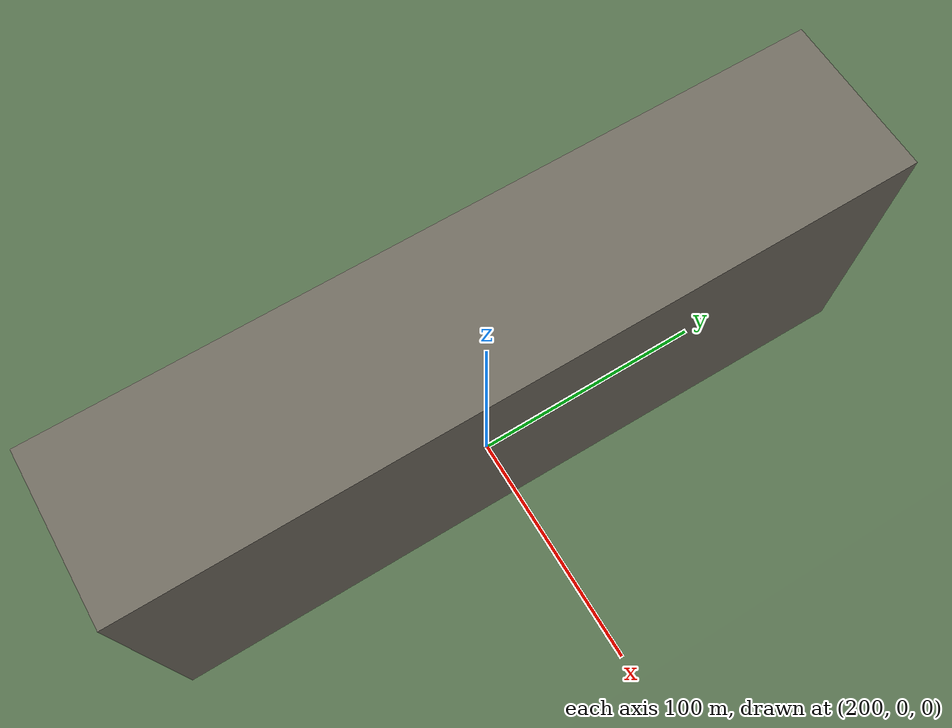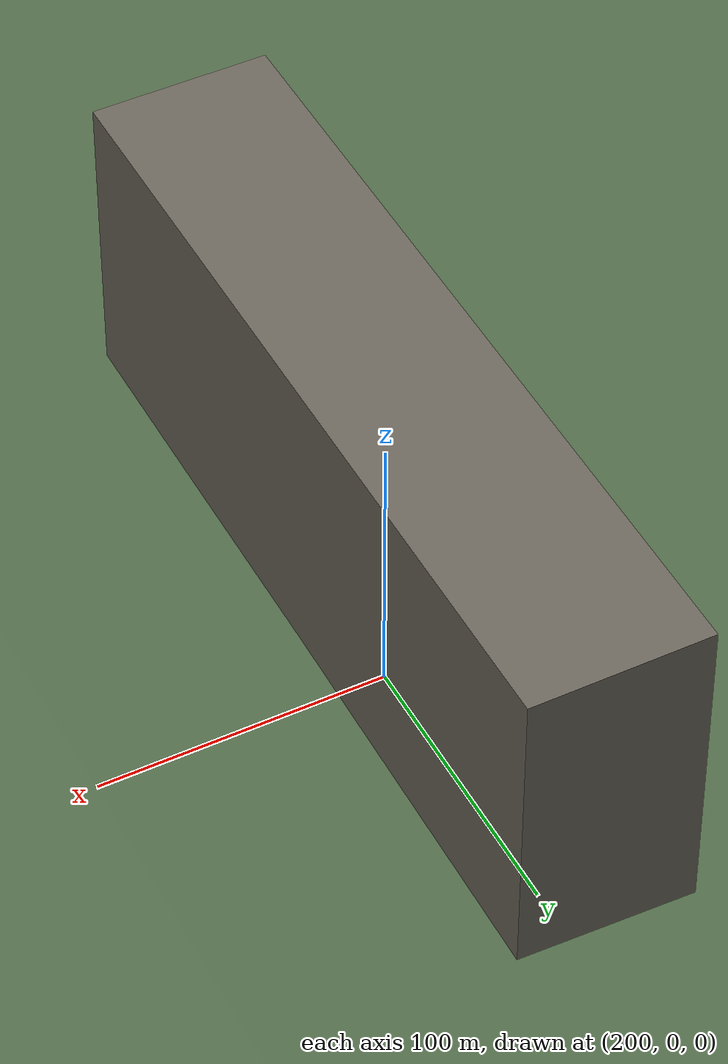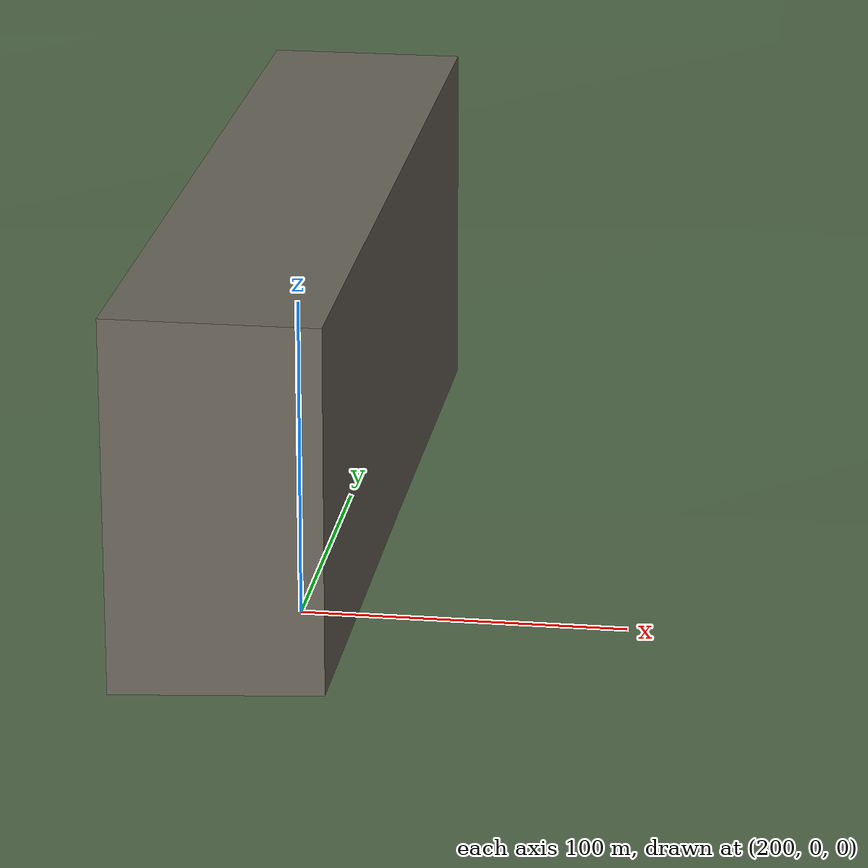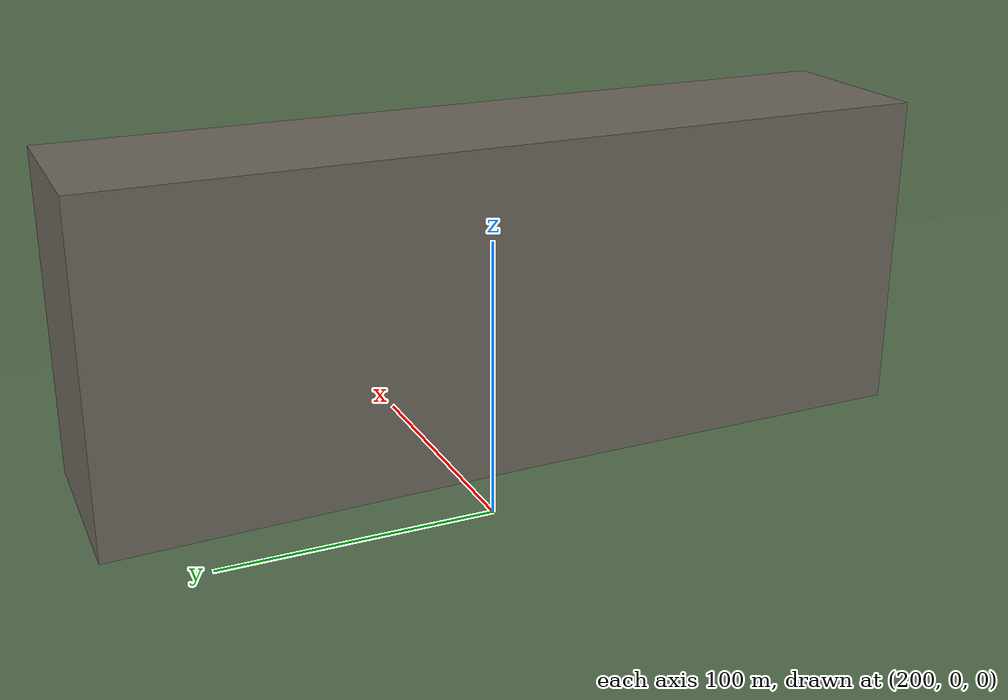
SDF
<?xml version="1.0" ?>
<sdf version="1.9">
  <world name="map">
    <physics name="1ms" type="bullet">
      <max_step_size>0.001</max_step_size>
      <real_time_factor>1.0</real_time_factor>
      <real_time_update_rate>0</real_time_update_rate>
    </physics>

    <plugin filename="gz-sim-physics-system" name="gz::sim::systems::Physics">
      <!-- DART in the Harmonic runtime cannot construct mesh collisions from SDF. -->
      <engine>
        <filename>gz-physics-bullet-featherstone-plugin</filename>
      </engine>
    </plugin>
    <plugin filename="gz-sim-sensors-system" name="gz::sim::systems::Sensors">
      <render_engine>ogre2</render_engine>
    </plugin>
    <plugin filename="gz-sim-user-commands-system" name="gz::sim::systems::UserCommands"/>
    <plugin filename="gz-sim-scene-broadcaster-system" name="gz::sim::systems::SceneBroadcaster"/>
    <plugin filename="gz-sim-air-pressure-system" name="gz::sim::systems::AirPressure"/>
    <plugin filename="gz-sim-air-speed-system" name="gz::sim::systems::AirSpeed"/>
    <plugin filename="gz-sim-altimeter-system" name="gz::sim::systems::Altimeter"/>
    <plugin filename="gz-sim-imu-system" name="gz::sim::systems::Imu"/>
    <plugin filename="gz-sim-magnetometer-system" name="gz::sim::systems::Magnetometer"/>
    <plugin filename="gz-sim-navsat-system" name="gz::sim::systems::NavSat"/>

    <scene>
      <ambient>0.4 0.4 0.4</ambient>
      <sky>true</sky>
    </scene>

    <spherical_coordinates>
      <latitude_deg>-35.3632621</latitude_deg>
      <longitude_deg>149.1652374</longitude_deg>
      <elevation>10.0</elevation>
      <heading_deg>0</heading_deg>
      <surface_model>EARTH_WGS84</surface_model>
    </spherical_coordinates>

    <light type="directional" name="sun">
      <cast_shadows>true</cast_shadows>
      <pose>0 0 10 0 0 0</pose>
      <diffuse>0.8 0.8 0.8 1</diffuse>
      <specular>0.2 0.2 0.2 1</specular>
      <attenuation>
        <range>1000</range>
        <constant>0.9</constant>
        <linear>0.01</linear>
        <quadratic>0.001</quadratic>
      </attenuation>
      <direction>-0.5 0.1 -0.9</direction>
    </light>

    <model name="engineering_terrain_visual">
      <static>true</static>
      <pose>0 0 0 0 0 0</pose>
      <link name="link">
        <collision name="collision">
          <geometry>
            <mesh>
              <uri>engineering_terrain.obj</uri>
            </mesh>
          </geometry>
        </collision>
        <visual name="visual">
          <geometry>
            <mesh>
              <uri>engineering_terrain.obj</uri>
            </mesh>
          </geometry>
          <material>
            <ambient>0.26 0.32 0.24 1</ambient>
            <diffuse>0.32 0.42 0.29 1</diffuse>
          </material>
        </visual>
      </link>
    </model>

    <model name="engineering_buildings_visual">
      <static>true</static>
      <pose>0 0 0 0 0 0</pose>
      <link name="link">
        <collision name="collision">
          <geometry>
            <mesh>
              <uri>engineering_buildings.obj</uri>
            </mesh>
          </geometry>
        </collision>
        <visual name="visual">
          <geometry>
            <mesh>
              <uri>engineering_buildings.obj</uri>
            </mesh>
          </geometry>
          <material>
            <ambient>0.36 0.34 0.32 1</ambient>
            <diffuse>0.48 0.46 0.42 1</diffuse>
          </material>
        </visual>
      </link>
    </model>

    <model name="radio_blocker">
      <static>true</static>
      <pose>0 0 0 0 0 0</pose>
      <link name="link">
        <collision name="collision">
          <geometry>
            <mesh>
              <uri>radio_blocker.obj</uri>
            </mesh>
          </geometry>
        </collision>
        <visual name="visual">
          <geometry>
            <mesh>
              <uri>radio_blocker.obj</uri>
            </mesh>
          </geometry>
          <material>
            <ambient>0.32 0.30 0.28 1</ambient>
            <diffuse>0.42 0.40 0.36 1</diffuse>
          </material>
        </visual>
      </link>
    </model>
  </world>
</sdf>
